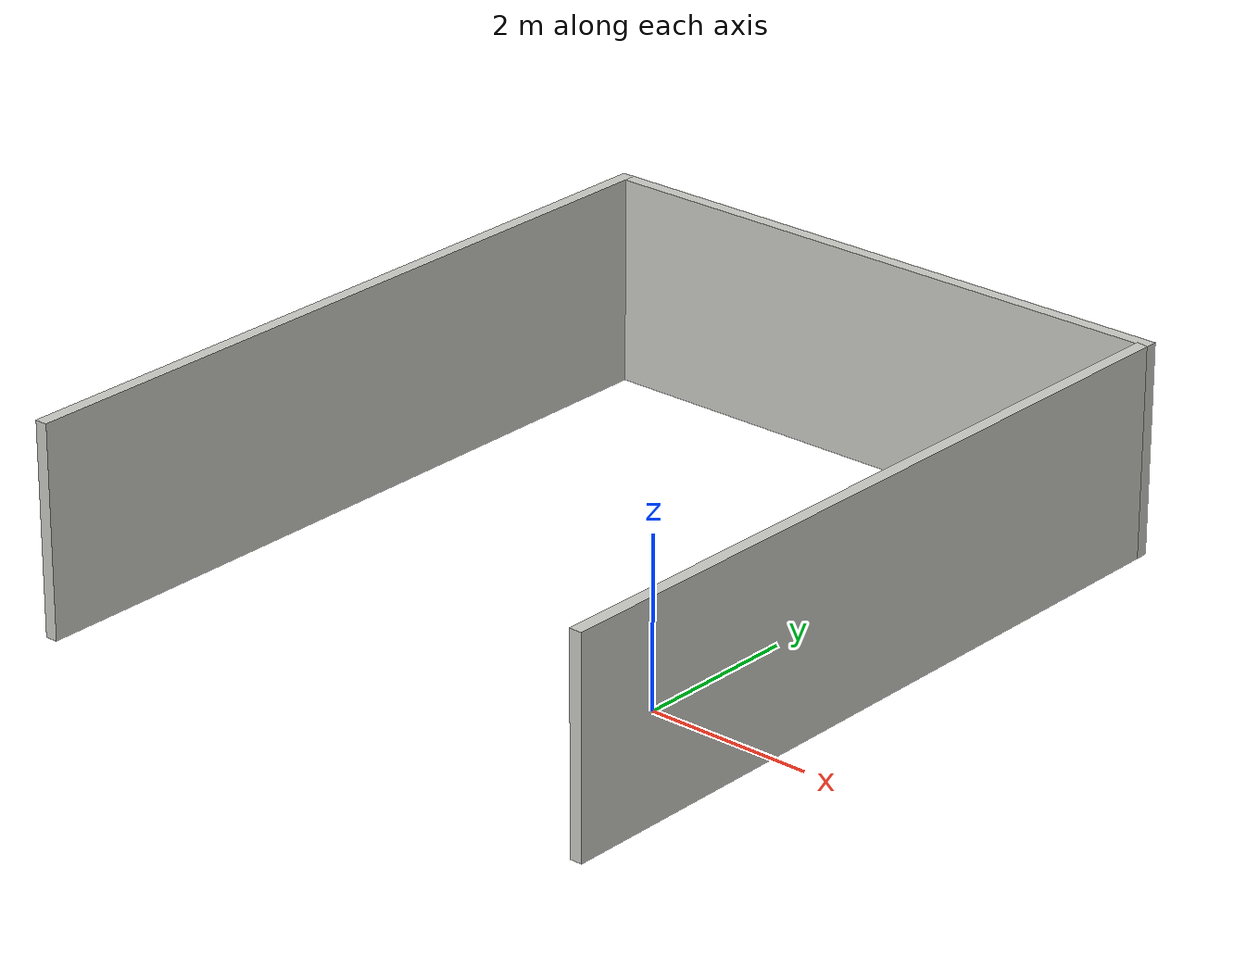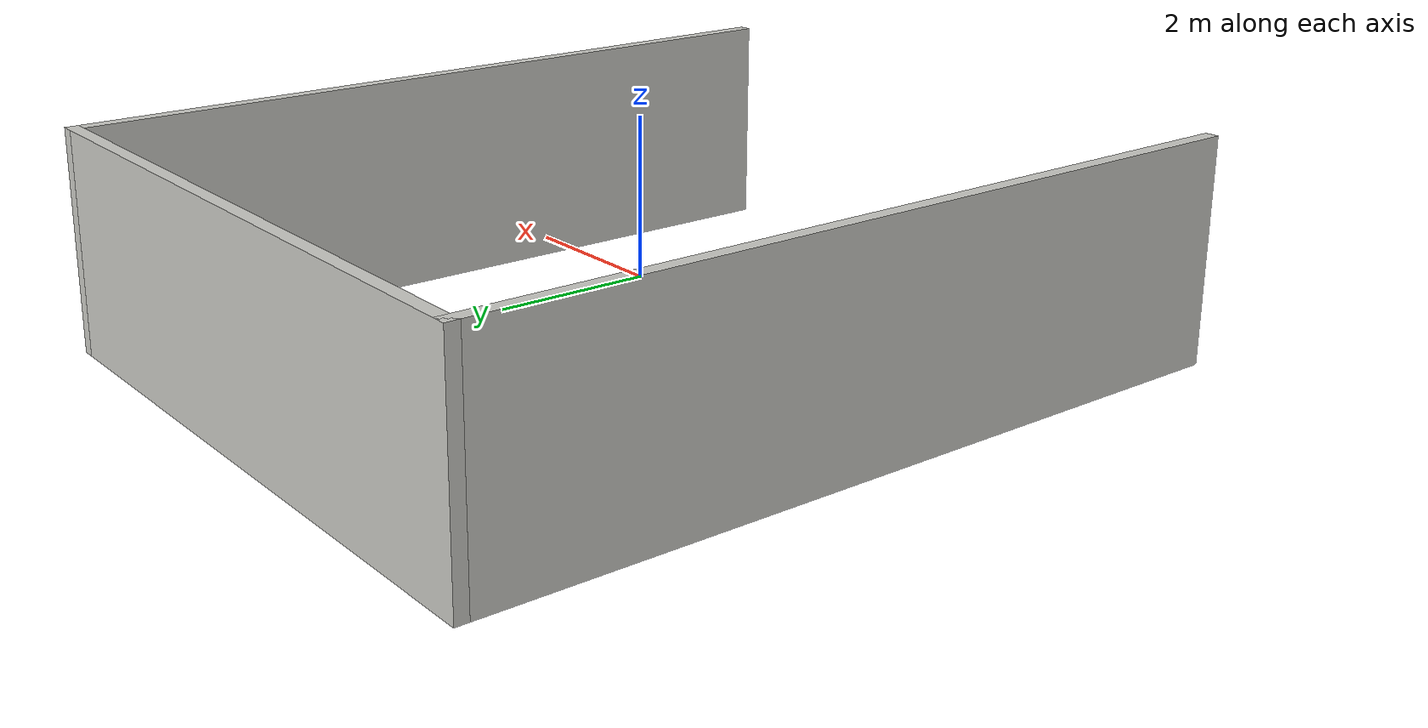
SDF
<?xml version='1.0'?>
<sdf version='1.6'>
  <model name='kitchen1'>
    <pose frame=''>-2.14958 1.71104 0 0 -0 0</pose>
    <link name='Wall_0'>
      <collision name='Wall_0_Collision'>
        <geometry>
          <box>
            <size>9.25 0.15 2.5</size>
          </box>
        </geometry>
        <pose frame=''>0 0 1.25 0 -0 0</pose>
      </collision>
      <visual name='Wall_0_Visual'>
        <pose frame=''>0 0 1.25 0 -0 0</pose>
        <geometry>
          <box>
            <size>9.25 0.15 2.5</size>
          </box>
        </geometry>
        <material>
          <script>
            <uri>file://media/materials/scripts/gazebo.material</uri>
            <name>Gazebo/CeilingTiled</name>
          </script>
          <ambient>1 1 1 1</ambient>
        </material>
      </visual>
      <pose frame=''>3.675 0 0 0 -0 1.5708</pose>
    </link>
    <link name='Wall_2'>
      <collision name='Wall_2_Collision'>
        <geometry>
          <box>
            <size>7.5 0.15 2.5</size>
          </box>
        </geometry>
        <pose frame=''>0 0 1.25 0 -0 0</pose>
      </collision>
      <visual name='Wall_2_Visual'>
        <pose frame=''>0 0 1.25 0 -0 0</pose>
        <geometry>
          <box>
            <size>7.5 0.15 2.5</size>
          </box>
        </geometry>
        <material>
          <script>
            <uri>file://media/materials/scripts/gazebo.material</uri>
            <name>Gazebo/CeilingTiled</name>
          </script>
          <ambient>1 1 1 1</ambient>
        </material>
      </visual>
      <pose frame=''>0 4.55 0 0 -0 3.14159</pose>
    </link>
    <link name='Wall_3'>
      <collision name='Wall_3_Collision'>
        <geometry>
          <box>
            <size>9.25 0.15 2.5</size>
          </box>
        </geometry>
        <pose frame=''>0 0 1.25 0 -0 0</pose>
      </collision>
      <visual name='Wall_3_Visual'>
        <pose frame=''>0 0 1.25 0 -0 0</pose>
        <geometry>
          <box>
            <size>9.25 0.15 2.5</size>
          </box>
        </geometry>
        <material>
          <script>
            <uri>file://media/materials/scripts/gazebo.material</uri>
            <name>Gazebo/CeilingTiled</name>
          </script>
          <ambient>1 1 1 1</ambient>
        </material>
      </visual>
      <pose frame=''>-3.675 0 0 0 0 -1.5708</pose>
    </link>
    <static>1</static>
  </model>
</sdf>
